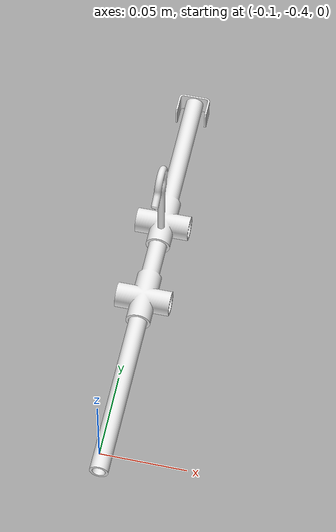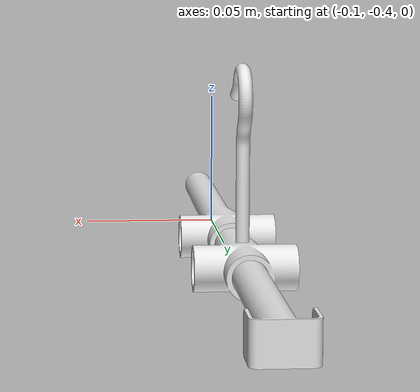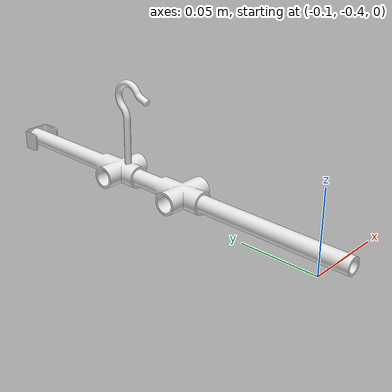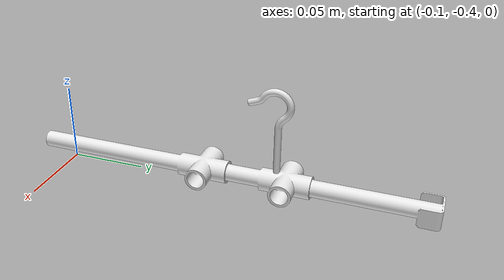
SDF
<?xml version='1.0'?>
<sdf version='1.7'>
  <model name='power_connector'>
    <link name='part_1'>
      <inertial>
        <pose>0 0 0 0 -0 0</pose>
        <mass>0.0001</mass>
        <inertia>
          <ixx>5.7e-07</ixx>
          <ixy>0</ixy>
          <ixz>0</ixz>
          <iyy>5.8e-07</iyy>
          <iyz>0</iyz>
          <izz>1e-08</izz>
        </inertia>
      </inertial>
      <self_collide>0</self_collide>
      <enable_wind>0</enable_wind>
      <kinematic>0</kinematic>
      <pose>-0.087877 -0.216714 0 1.5708 -0 0</pose>
      <gravity>1</gravity>
      <is_static>1</is_static>
      <frame name='part_1_frame'>
        <pose>0 0 0 0 -0 0</pose>
      </frame>
      <visual name='assembly_visual'>
        <pose>0 0 0 0 -0 0</pose>
        <geometry>
          <mesh>
            <uri>/home/eer/Documents/Software_2024/ROS2/models/power_connector/power_connector_visual.stl</uri>
            <scale>0.5 0.5 0.5</scale>
          </mesh>
        </geometry>
        <material>
          <shader type='pixel'>
            <normal_map>__default__</normal_map>
          </shader>
          <ambient>1 1 1 1</ambient>
          <diffuse>1 1 1 1</diffuse>
          <specular>1 1 1 1</specular>
          <emissive>0 0 0 1</emissive>
          <script>
            <name>Gazebo/White</name>
            <uri>__default__</uri>
          </script>
        </material>
        <transparency>0</transparency>
        <cast_shadows>1</cast_shadows>
      </visual>
      <collision name='collision_2'>
        <laser_retro>0</laser_retro>
        <max_contacts>10</max_contacts>
        <pose>-0.01 0.07 0.04 1.5708 -0 0</pose>
        <geometry>
          <box>
            <size>0.00882 0.017348 0.112249</size>
          </box>
        </geometry>
        <surface>
          <friction>
            <ode>
              <mu>1</mu>
              <mu2>1</mu2>
              <fdir1>0 0 0</fdir1>
              <slip1>0</slip1>
              <slip2>0</slip2>
            </ode>
            <torsional>
              <coefficient>1</coefficient>
              <patch_radius>0</patch_radius>
              <surface_radius>0</surface_radius>
              <use_patch_radius>1</use_patch_radius>
              <ode>
                <slip>0</slip>
              </ode>
            </torsional>
          </friction>
          <bounce>
            <restitution_coefficient>0</restitution_coefficient>
            <threshold>1e+06</threshold>
          </bounce>
          <contact>
            <collide_without_contact>0</collide_without_contact>
            <collide_without_contact_bitmask>1</collide_without_contact_bitmask>
            <collide_bitmask>1</collide_bitmask>
            <ode>
              <soft_cfm>0</soft_cfm>
              <soft_erp>0.2</soft_erp>
              <kp>1e+13</kp>
              <kd>1</kd>
              <max_vel>0.01</max_vel>
              <min_depth>0</min_depth>
            </ode>
            <bullet>
              <split_impulse>1</split_impulse>
              <split_impulse_penetration_threshold>-0.01</split_impulse_penetration_threshold>
              <soft_cfm>0</soft_cfm>
              <soft_erp>0.2</soft_erp>
              <kp>1e+13</kp>
              <kd>1</kd>
            </bullet>
          </contact>
        </surface>
      </collision>
      <collision name='collision_1'>
        <laser_retro>0</laser_retro>
        <max_contacts>10</max_contacts>
        <pose>-0.008 0.01 0.07 0 -0 0</pose>
        <geometry>
          <box>
            <size>0.025 0.011125 0.261738</size>
          </box>
        </geometry>
        <surface>
          <friction>
            <ode>
              <mu>1</mu>
              <mu2>1</mu2>
              <fdir1>0 0 0</fdir1>
              <slip1>0</slip1>
              <slip2>0</slip2>
            </ode>
            <torsional>
              <coefficient>1</coefficient>
              <patch_radius>0</patch_radius>
              <surface_radius>0</surface_radius>
              <use_patch_radius>1</use_patch_radius>
              <ode>
                <slip>0</slip>
              </ode>
            </torsional>
          </friction>
          <bounce>
            <restitution_coefficient>0</restitution_coefficient>
            <threshold>1e+06</threshold>
          </bounce>
          <contact>
            <collide_without_contact>0</collide_without_contact>
            <collide_without_contact_bitmask>1</collide_without_contact_bitmask>
            <collide_bitmask>1</collide_bitmask>
            <ode>
              <soft_cfm>0</soft_cfm>
              <soft_erp>0.2</soft_erp>
              <kp>1e+13</kp>
              <kd>1</kd>
              <max_vel>0.01</max_vel>
              <min_depth>0</min_depth>
            </ode>
            <bullet>
              <split_impulse>1</split_impulse>
              <split_impulse_penetration_threshold>-0.01</split_impulse_penetration_threshold>
              <soft_cfm>0</soft_cfm>
              <soft_erp>0.2</soft_erp>
              <kp>1e+13</kp>
              <kd>1</kd>
            </bullet>
          </contact>
        </surface>
      </collision>
      <collision name='collision_3'>
        <laser_retro>0</laser_retro>
        <max_contacts>10</max_contacts>
        <pose>-0.01 0.13 0.04 0 -0 0</pose>
        <geometry>
          <box>
            <size>0.03175 0.011125 0.03</size>
          </box>
        </geometry>
        <surface>
          <friction>
            <ode>
              <mu>1</mu>
              <mu2>1</mu2>
              <fdir1>0 0 0</fdir1>
              <slip1>0</slip1>
              <slip2>0</slip2>
            </ode>
            <torsional>
              <coefficient>1</coefficient>
              <patch_radius>0</patch_radius>
              <surface_radius>0</surface_radius>
              <use_patch_radius>1</use_patch_radius>
              <ode>
                <slip>0</slip>
              </ode>
            </torsional>
          </friction>
          <bounce>
            <restitution_coefficient>0</restitution_coefficient>
            <threshold>1e+06</threshold>
          </bounce>
          <contact>
            <collide_without_contact>0</collide_without_contact>
            <collide_without_contact_bitmask>1</collide_without_contact_bitmask>
            <collide_bitmask>1</collide_bitmask>
            <ode>
              <soft_cfm>0</soft_cfm>
              <soft_erp>0.2</soft_erp>
              <kp>1e+13</kp>
              <kd>1</kd>
              <max_vel>0.01</max_vel>
              <min_depth>0</min_depth>
            </ode>
            <bullet>
              <split_impulse>1</split_impulse>
              <split_impulse_penetration_threshold>-0.01</split_impulse_penetration_threshold>
              <soft_cfm>0</soft_cfm>
              <soft_erp>0.2</soft_erp>
              <kp>1e+13</kp>
              <kd>1</kd>
            </bullet>
          </contact>
        </surface>
      </collision>
    </link>
    <static>0</static>
    <allow_auto_disable>1</allow_auto_disable>
  </model>
</sdf>
